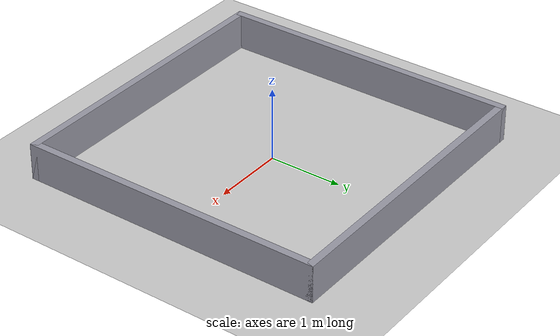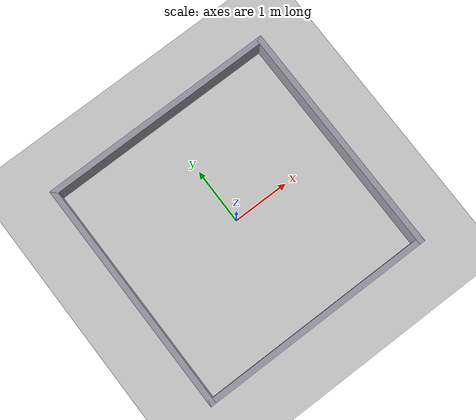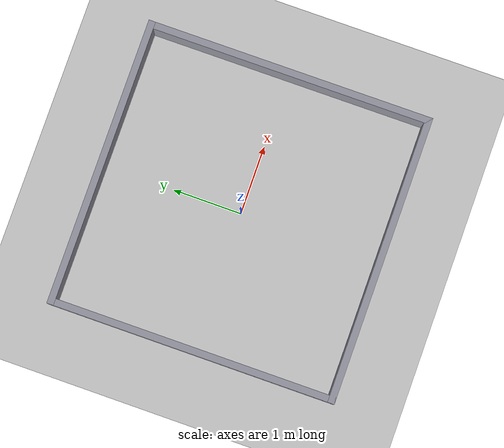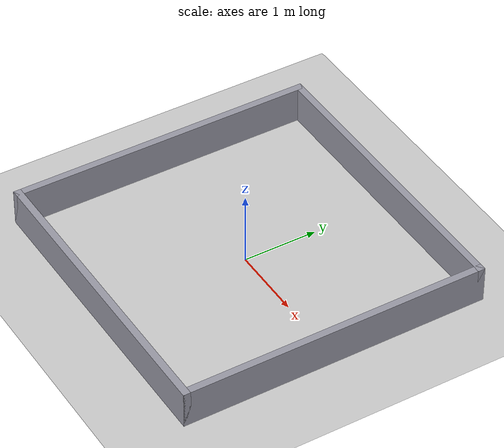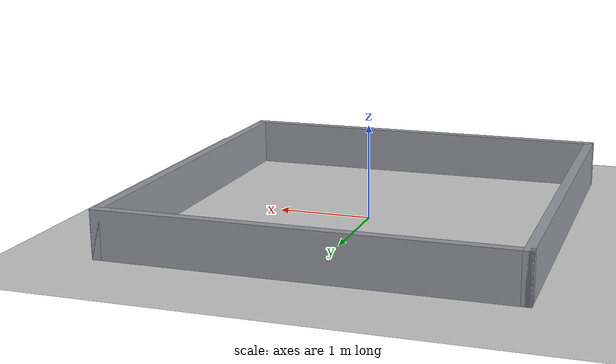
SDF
<?xml version="1.0" ?>
<sdf version="1.10">
  <world name="room">

    <physics name="1ms" type="ignored">
      <max_step_size>0.001</max_step_size>
      <real_time_factor>1.0</real_time_factor>
    </physics>

    <plugin filename="gz-sim-physics-system"
            name="gz::sim::systems::Physics"/>
    <plugin filename="gz-sim-user-commands-system"
            name="gz::sim::systems::UserCommands"/>
    <plugin filename="gz-sim-scene-broadcaster-system"
            name="gz::sim::systems::SceneBroadcaster"/>
    <plugin filename="gz-sim-sensors-system"
            name="gz::sim::systems::Sensors">
      <render_engine>ogre2</render_engine>
    </plugin>

    <scene>
      <ambient>0.4 0.4 0.4 1</ambient>
      <background>0.7 0.7 0.8 1</background>
      <shadows>true</shadows>
    </scene>

    <light type="directional" name="sun">
      <cast_shadows>true</cast_shadows>
      <pose>0 0 10 0 0 0</pose>
      <diffuse>0.9 0.9 0.9 1</diffuse>
      <specular>0.2 0.2 0.2 1</specular>
      <direction>-0.4 0.3 -0.9</direction>
    </light>

    <model name="ground_plane">
      <static>true</static>
      <link name="link">
        <collision name="collision">
          <geometry>
            <plane>
              <normal>0 0 1</normal>
              <size>20 20</size>
            </plane>
          </geometry>
        </collision>
        <visual name="visual">
          <geometry>
            <plane>
              <normal>0 0 1</normal>
              <size>20 20</size>
            </plane>
          </geometry>
          <material>
            <ambient>0.8 0.8 0.8 1</ambient>
            <diffuse>0.8 0.8 0.8 1</diffuse>
            <specular>0.2 0.2 0.2 1</specular>
          </material>
        </visual>
      </link>
    </model>

    <!-- Four walls forming a 4x4 m room (interior -2..2 in x and y) -->
    <model name="walls">
      <static>true</static>

      <link name="wall_north">
        <pose>0 2.05 0.25 0 0 0</pose>
        <collision name="collision">
          <geometry><box><size>4.2 0.1 0.5</size></box></geometry>
        </collision>
        <visual name="visual">
          <geometry><box><size>4.2 0.1 0.5</size></box></geometry>
          <material>
            <ambient>0.5 0.5 0.55 1</ambient>
            <diffuse>0.6 0.6 0.65 1</diffuse>
          </material>
        </visual>
      </link>

      <link name="wall_south">
        <pose>0 -2.05 0.25 0 0 0</pose>
        <collision name="collision">
          <geometry><box><size>4.2 0.1 0.5</size></box></geometry>
        </collision>
        <visual name="visual">
          <geometry><box><size>4.2 0.1 0.5</size></box></geometry>
          <material>
            <ambient>0.5 0.5 0.55 1</ambient>
            <diffuse>0.6 0.6 0.65 1</diffuse>
          </material>
        </visual>
      </link>

      <link name="wall_east">
        <pose>2.05 0 0.25 0 0 0</pose>
        <collision name="collision">
          <geometry><box><size>0.1 4.2 0.5</size></box></geometry>
        </collision>
        <visual name="visual">
          <geometry><box><size>0.1 4.2 0.5</size></box></geometry>
          <material>
            <ambient>0.5 0.5 0.55 1</ambient>
            <diffuse>0.6 0.6 0.65 1</diffuse>
          </material>
        </visual>
      </link>

      <link name="wall_west">
        <pose>-2.05 0 0.25 0 0 0</pose>
        <collision name="collision">
          <geometry><box><size>0.1 4.2 0.5</size></box></geometry>
        </collision>
        <visual name="visual">
          <geometry><box><size>0.1 4.2 0.5</size></box></geometry>
          <material>
            <ambient>0.5 0.5 0.55 1</ambient>
            <diffuse>0.6 0.6 0.65 1</diffuse>
          </material>
        </visual>
      </link>
    </model>

  </world>
</sdf>
